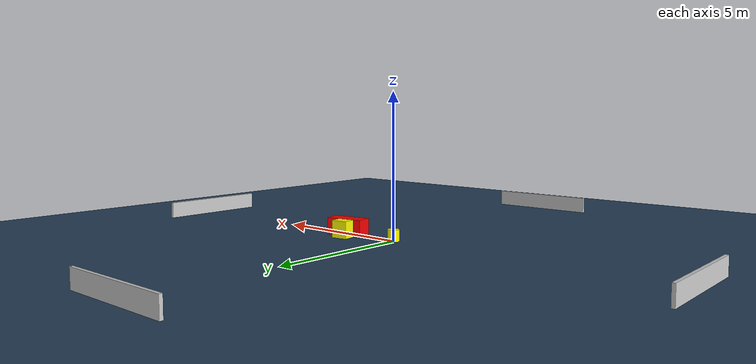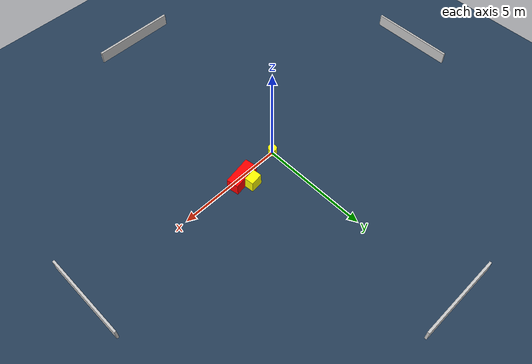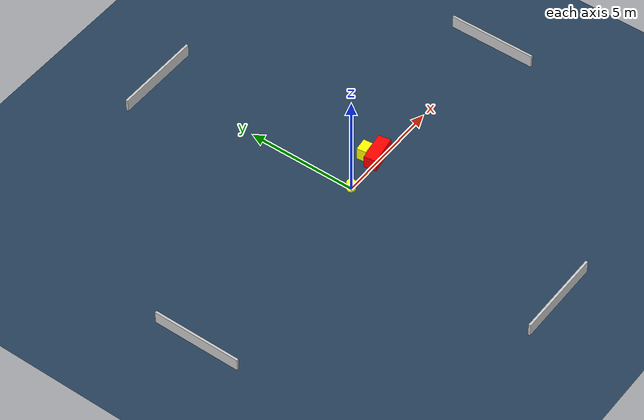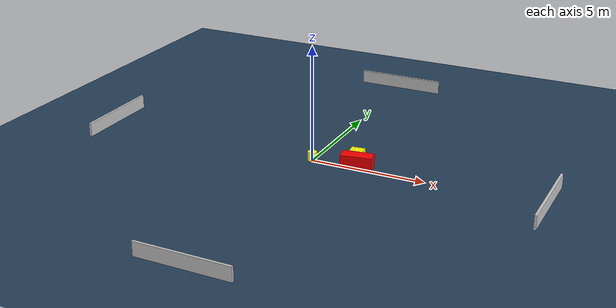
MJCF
<?xml version="1.0" ?>
<mujoco model="generated_environment">
  <option timestep="0.01" integrator="RK4" cone="elliptic"/>
  <default>
    <geom density="1"/>
  </default>
  <asset>
    <texture builtin="gradient" height="3072" name="skybox" rgb1="0.3 0.5 0.7" rgb2="0 0 0" type="skybox" width="512"/>
    <texture builtin="checker" height="300" name="groundplane" rgb1="0.2 0.3 0.4" rgb2="0.1 0.2 0.3" type="2d" width="300"/>
    <material name="groundplane" reflectance="0.2" texrepeat="5 5" texture="groundplane"/>
  </asset>
  <worldbody>
    <light dir="0 0 -1" directional="true" pos="0 0 1.5"/>
    <geom condim="3" friction="0.5 0.005 0.001" material="groundplane" name="floor" pos="0 0 0" size="0 0 0.05" type="plane"/>
    <body name="walls">
      <geom name="wall_1" condim="4" pos="-10.0 0.0 0.3" rgba="0.800000011920929 0.800000011920929 0.800000011920929 1.0" size="0.05 2.0 0.3" type="box"/>
      <geom name="wall_2" condim="4" pos="10.0 0.0 0.3" rgba="0.800000011920929 0.800000011920929 0.800000011920929 1.0" size="0.05 2.0 0.3" type="box"/>
      <geom name="wall_3" condim="4" pos="0.0 -10.0 0.3" rgba="0.800000011920929 0.800000011920929 0.800000011920929 1.0" size="2.0 0.05 0.3" type="box"/>
      <geom name="wall_4" condim="4" pos="0.0 10.0 0.3" rgba="0.800000011920929 0.800000011920929 0.800000011920929 1.0" size="2.0 0.05 0.3" type="box"/>
    </body>
    <body name="robot">
      <joint name="joint_x" type="slide" pos="0 0 0" axis="1 0 0"/>
      <joint name="joint_y" type="slide" pos="0 0 0" axis="0 1 0"/>
      <geom name="robot" type="cylinder" pos="0.0 0.0 0.2" size="0.2 0.2 0.0" mass="5.0" friction="1.0 0.005 0.0001" condim="4" rgba="1.0 1.0 0.0 1.0"/>
    </body>
    <body name="obstacle_1_movable">
      <geom name="obstacle_1_movable" condim="4" pos="1.7777057628578494 0.621450505719317 0.3" euler="0 0 96.26146804876471" friction="0.0 0.005 0.001" rgba="1.0 1.0 0.0 1.0" size="0.21042418920165418 0.290476326209529 0.3" type="box" mass="0.1"/>
      <joint type="free"/>
    </body>
    <body name="obstacle_2_static">
      <geom name="obstacle_2_static" condim="4" pos="1.9827067546271995 0.13759299687831134 0.3" euler="0 0 189.6292417459799" friction="0.0 0.005 0.001" rgba="1.0 0.0 0.0 1.0" size="0.6689673358460104 0.28261840380009634 0.3" type="box"/>
    </body>
  </worldbody>
  <actuator>
    <motor name="actuator_x" joint="joint_x" gear="1" ctrlrange="-1 1"/>
    <motor name="actuator_y" joint="joint_y" gear="1" ctrlrange="-1 1"/>
  </actuator>
</mujoco>
